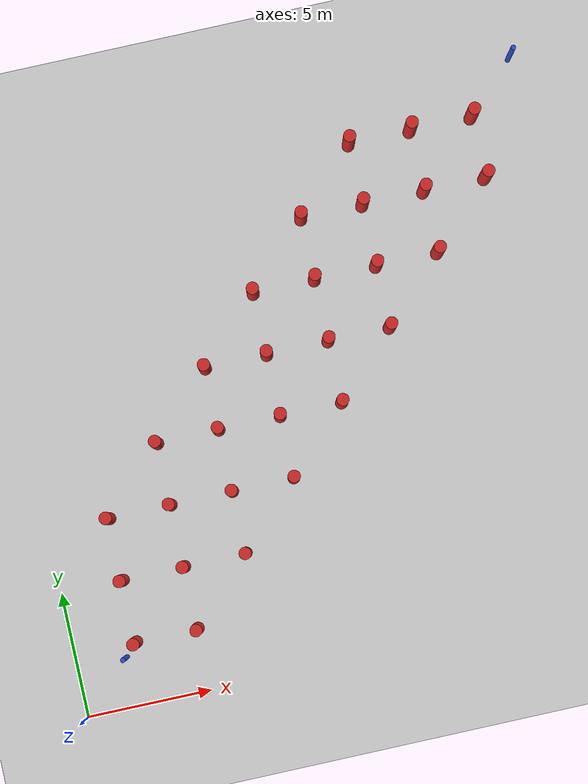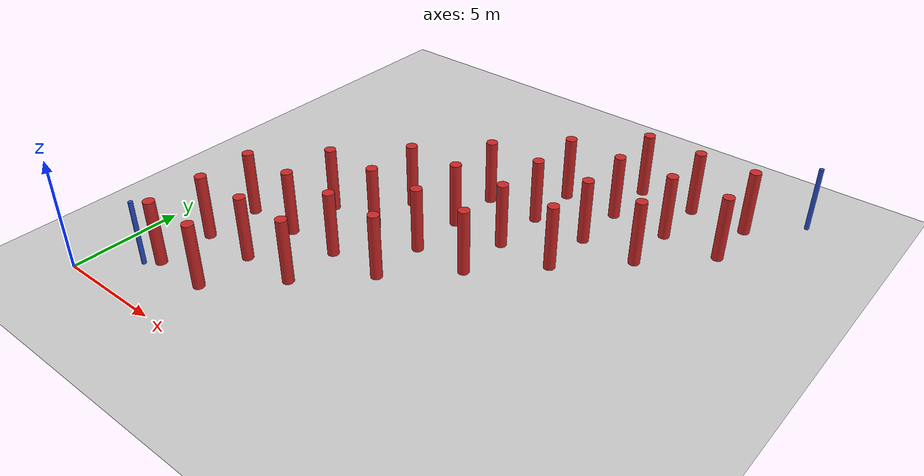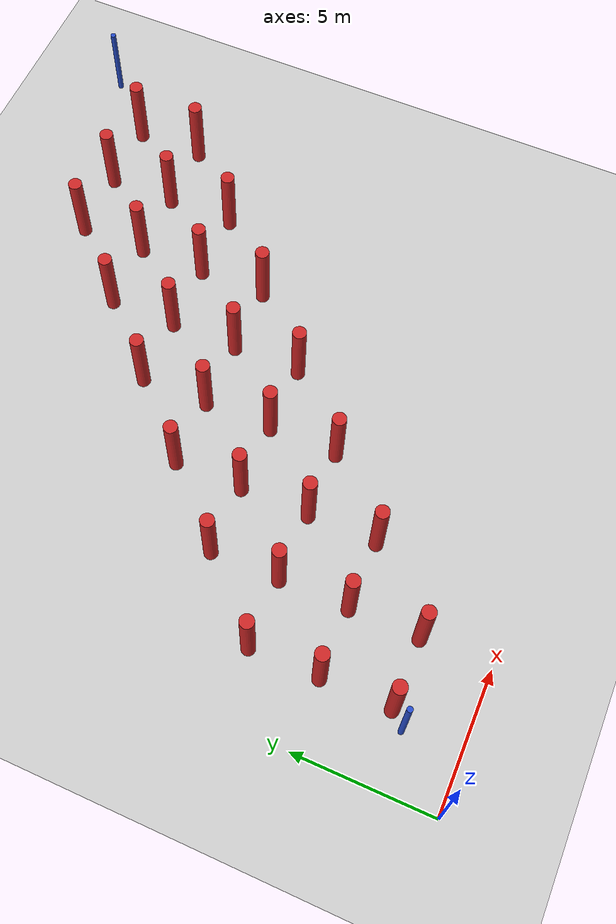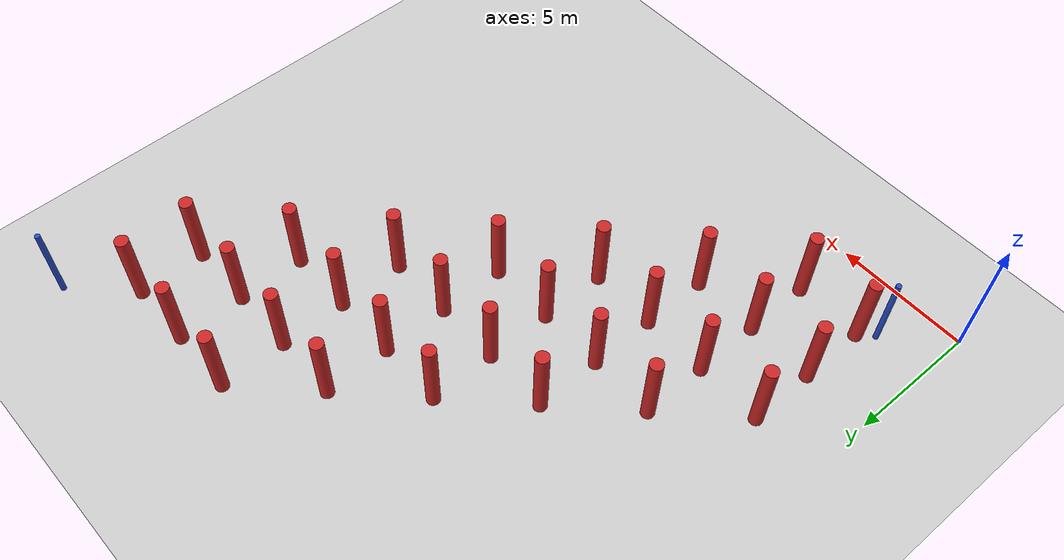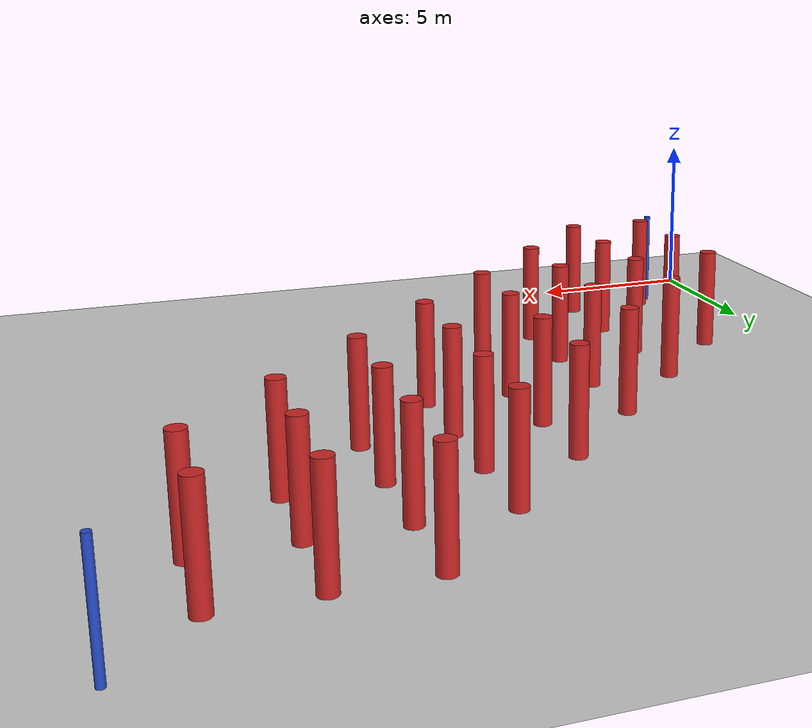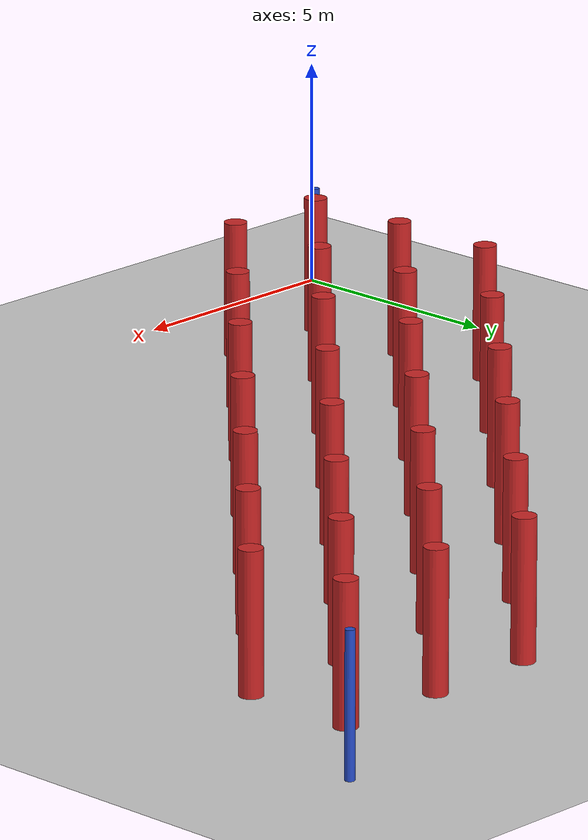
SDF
<sdf version='1.5'>
  <world name='default'>
    <light name='sun' type='directional'>
      <cast_shadows>1</cast_shadows>
      <pose>0 0 10 0 -0 0</pose>
      <diffuse>0.5 0.5 0.5 1</diffuse>
      <specular>0.2.5 0.2.5 0.2.5 1</specular>
      <attenuation>
        <range>1000</range>
        <constant>0.9</constant>
        <linear>0.01</linear>
        <quadratic>0.001</quadratic>
      </attenuation>
      <direction>-0.5 0.1 -0.9</direction>
    </light>
    <model name='ground_plane'>
      <static>1</static>
      <link name='link'>
        <collision name='collision'>
          <geometry>
            <plane>
              <normal>0 0 1</normal>
              <size>100 100</size>
            </plane>
          </geometry>
          <surface>
            <friction>
              <ode>
                <mu>100</mu>
                <mu2>50</mu2>
              </ode>
            </friction>
            <bounce/>
            <contact>
              <ode/>
            </contact>
          </surface>
          <max_contacts>9</max_contacts>
        </collision>
        <visual name='visual'>
          <cast_shadows>0</cast_shadows>
          <geometry>
            <plane>
              <normal>0 0 1</normal>
              <size>100 100</size>
            </plane>
          </geometry>
          <material>
            <script>
              <uri>file://media/materials/scripts/gazebo.material</uri>
              <name>Gazebo/Grey</name>
            </script>
          </material>
        </visual>
        <velocity_decay>
          <linear>0</linear>
          <angular>0</angular>
        </velocity_decay>
        <self_collide>0</self_collide>
        <kinematic>0</kinematic>
        <gravity>1</gravity>
      </link>
    </model>
    <physics type='ode'>
      <max_step_size>0.01</max_step_size>
      <real_time_factor>1</real_time_factor>
      <real_time_update_rate>100</real_time_update_rate>
      <gravity>0 0 -9.8</gravity>
    </physics>
    <scene>
      <ambient>0.5 0.5 0.5 1</ambient>
      <background>0.7 0.7 0.7 1</background>
      <shadows>1</shadows>
    </scene>
    <spherical_coordinates>
      <surface_model>EARTH_WGS84</surface_model>
      <latitude_deg>0</latitude_deg>
      <longitude_deg>0</longitude_deg>
      <elevation>0</elevation>
      <heading_deg>0</heading_deg>
    </spherical_coordinates>
    <model name='cylinder_1'>
      <pose>2.5 2.5 1.5 0 -0 0</pose>
      <link name='link'>
        <inertial>
          <mass>1000</mass>
          <inertia>
            <ixx>1000</ixx>
            <ixy>0</ixy>
            <ixz>0</ixz>
            <iyy>1000</iyy>
            <iyz>0</iyz>
            <izz>1000</izz>
          </inertia>
        </inertial>
        <collision name='collision'>
          <geometry>
            <cylinder>
              <radius>0.25</radius>
              <length>3</length>
            </cylinder>
          </geometry>
          <max_contacts>9</max_contacts>
          <surface>
            <bounce/>
            <friction>
              <ode/>
            </friction>
            <contact>
              <ode/>
            </contact>
          </surface>
        </collision>
        <visual name='visual'>
          <geometry>
            <cylinder>
              <radius>0.25</radius>
              <length>3</length>
            </cylinder>
          </geometry>
          <material>
            <script>
              <uri>file://media/materials/scripts/gazebo.material</uri>
              <name>Gazebo/Red</name>
            </script>
          </material>
        </visual>
        <velocity_decay>
          <linear>0</linear>
          <angular>0</angular>
        </velocity_decay>
        <self_collide>0</self_collide>
        <kinematic>0</kinematic>
        <gravity>1</gravity>
      </link>
      <static>1</static>
    </model>
    <model name='cylinder_2'>
      <pose>2.5 5 1.5 0 -0 0</pose>
      <link name='link'>
        <inertial>
          <mass>1000</mass>
          <inertia>
            <ixx>1000</ixx>
            <ixy>0</ixy>
            <ixz>0</ixz>
            <iyy>1000</iyy>
            <iyz>0</iyz>
            <izz>1000</izz>
          </inertia>
        </inertial>
        <collision name='collision'>
          <geometry>
            <cylinder>
              <radius>0.25</radius>
              <length>3</length>
            </cylinder>
          </geometry>
          <max_contacts>9</max_contacts>
          <surface>
            <bounce/>
            <friction>
              <ode/>
            </friction>
            <contact>
              <ode/>
            </contact>
          </surface>
        </collision>
        <visual name='visual'>
          <geometry>
            <cylinder>
              <radius>0.25</radius>
              <length>3</length>
            </cylinder>
          </geometry>
          <material>
            <script>
              <uri>file://media/materials/scripts/gazebo.material</uri>
              <name>Gazebo/Red</name>
            </script>
          </material>
        </visual>
        <velocity_decay>
          <linear>0</linear>
          <angular>0</angular>
        </velocity_decay>
        <self_collide>0</self_collide>
        <kinematic>0</kinematic>
        <gravity>1</gravity>
      </link>
      <static>1</static>
    </model>
    <model name='cylinder_3'>
      <pose>2.5 7.5 1.5 0 -0 0</pose>
      <link name='link'>
        <inertial>
          <mass>1000</mass>
          <inertia>
            <ixx>1000</ixx>
            <ixy>0</ixy>
            <ixz>0</ixz>
            <iyy>1000</iyy>
            <iyz>0</iyz>
            <izz>1000</izz>
          </inertia>
        </inertial>
        <collision name='collision'>
          <geometry>
            <cylinder>
              <radius>0.25</radius>
              <length>3</length>
            </cylinder>
          </geometry>
          <max_contacts>9</max_contacts>
          <surface>
            <bounce/>
            <friction>
              <ode/>
            </friction>
            <contact>
              <ode/>
            </contact>
          </surface>
        </collision>
        <visual name='visual'>
          <geometry>
            <cylinder>
              <radius>0.25</radius>
              <length>3</length>
            </cylinder>
          </geometry>
          <material>
            <script>
              <uri>file://media/materials/scripts/gazebo.material</uri>
              <name>Gazebo/Red</name>
            </script>
          </material>
        </visual>
        <velocity_decay>
          <linear>0</linear>
          <angular>0</angular>
        </velocity_decay>
        <self_collide>0</self_collide>
        <kinematic>0</kinematic>
        <gravity>1</gravity>
      </link>
      <static>1</static>
    </model>
    <model name='cylinder_4'>
      <pose>15 17.5 1.5 0 -0 0</pose>
      <link name='link'>
        <inertial>
          <mass>1000</mass>
          <inertia>
            <ixx>1000</ixx>
            <ixy>0</ixy>
            <ixz>0</ixz>
            <iyy>1000</iyy>
            <iyz>0</iyz>
            <izz>1000</izz>
          </inertia>
        </inertial>
        <collision name='collision'>
          <geometry>
            <cylinder>
              <radius>0.25</radius>
              <length>3</length>
            </cylinder>
          </geometry>
          <max_contacts>9</max_contacts>
          <surface>
            <bounce/>
            <friction>
              <ode/>
            </friction>
            <contact>
              <ode/>
            </contact>
          </surface>
        </collision>
        <visual name='visual'>
          <geometry>
            <cylinder>
              <radius>0.25</radius>
              <length>3</length>
            </cylinder>
          </geometry>
          <material>
            <script>
              <uri>file://media/materials/scripts/gazebo.material</uri>
              <name>Gazebo/Red</name>
            </script>
          </material>
        </visual>
        <velocity_decay>
          <linear>0</linear>
          <angular>0</angular>
        </velocity_decay>
        <self_collide>0</self_collide>
        <kinematic>0</kinematic>
        <gravity>1</gravity>
      </link>
      <static>1</static>
    </model>
    <model name='cylinder_5'>
      <pose>15 12.5 1.5 0 -0 0</pose>
      <link name='link'>
        <inertial>
          <mass>1000</mass>
          <inertia>
            <ixx>1000</ixx>
            <ixy>0</ixy>
            <ixz>0</ixz>
            <iyy>1000</iyy>
            <iyz>0</iyz>
            <izz>1000</izz>
          </inertia>
        </inertial>
        <collision name='collision'>
          <geometry>
            <cylinder>
              <radius>0.25</radius>
              <length>3</length>
            </cylinder>
          </geometry>
          <max_contacts>9</max_contacts>
          <surface>
            <bounce/>
            <friction>
              <ode/>
            </friction>
            <contact>
              <ode/>
            </contact>
          </surface>
        </collision>
        <visual name='visual'>
          <geometry>
            <cylinder>
              <radius>0.25</radius>
              <length>3</length>
            </cylinder>
          </geometry>
          <material>
            <script>
              <uri>file://media/materials/scripts/gazebo.material</uri>
              <name>Gazebo/Red</name>
            </script>
          </material>
        </visual>
        <velocity_decay>
          <linear>0</linear>
          <angular>0</angular>
        </velocity_decay>
        <self_collide>0</self_collide>
        <kinematic>0</kinematic>
        <gravity>1</gravity>
      </link>
      <static>1</static>
    </model>
    <model name='cylinder_6'>
      <pose>5 2.5 1.5 0 -0 0</pose>
      <link name='link'>
        <inertial>
          <mass>1000</mass>
          <inertia>
            <ixx>1000</ixx>
            <ixy>0</ixy>
            <ixz>0</ixz>
            <iyy>1000</iyy>
            <iyz>0</iyz>
            <izz>1000</izz>
          </inertia>
        </inertial>
        <collision name='collision'>
          <geometry>
            <cylinder>
              <radius>0.25</radius>
              <length>3</length>
            </cylinder>
          </geometry>
          <max_contacts>9</max_contacts>
          <surface>
            <bounce/>
            <friction>
              <ode/>
            </friction>
            <contact>
              <ode/>
            </contact>
          </surface>
        </collision>
        <visual name='visual'>
          <geometry>
            <cylinder>
              <radius>0.25</radius>
              <length>3</length>
            </cylinder>
          </geometry>
          <material>
            <script>
              <uri>file://media/materials/scripts/gazebo.material</uri>
              <name>Gazebo/Red</name>
            </script>
          </material>
        </visual>
        <velocity_decay>
          <linear>0</linear>
          <angular>0</angular>
        </velocity_decay>
        <self_collide>0</self_collide>
        <kinematic>0</kinematic>
        <gravity>1</gravity>
      </link>
      <static>1</static>
    </model>
    <model name='cylinder_7'>
      <pose>5 5 1.5 0 -0 0</pose>
      <link name='link'>
        <inertial>
          <mass>1000</mass>
          <inertia>
            <ixx>1000</ixx>
            <ixy>0</ixy>
            <ixz>0</ixz>
            <iyy>1000</iyy>
            <iyz>0</iyz>
            <izz>1000</izz>
          </inertia>
        </inertial>
        <collision name='collision'>
          <geometry>
            <cylinder>
              <radius>0.25</radius>
              <length>3</length>
            </cylinder>
          </geometry>
          <max_contacts>9</max_contacts>
          <surface>
            <bounce/>
            <friction>
              <ode/>
            </friction>
            <contact>
              <ode/>
            </contact>
          </surface>
        </collision>
        <visual name='visual'>
          <geometry>
            <cylinder>
              <radius>0.25</radius>
              <length>3</length>
            </cylinder>
          </geometry>
          <material>
            <script>
              <uri>file://media/materials/scripts/gazebo.material</uri>
              <name>Gazebo/Red</name>
            </script>
          </material>
        </visual>
        <velocity_decay>
          <linear>0</linear>
          <angular>0</angular>
        </velocity_decay>
        <self_collide>0</self_collide>
        <kinematic>0</kinematic>
        <gravity>1</gravity>
      </link>
      <static>1</static>
    </model>
    <model name='cylinder_8'>
      <pose>5 7.5 1.5 0 -0 0</pose>
      <link name='link'>
        <inertial>
          <mass>1000</mass>
          <inertia>
            <ixx>1000</ixx>
            <ixy>0</ixy>
            <ixz>0</ixz>
            <iyy>1000</iyy>
            <iyz>0</iyz>
            <izz>1000</izz>
          </inertia>
        </inertial>
        <collision name='collision'>
          <geometry>
            <cylinder>
              <radius>0.25</radius>
              <length>3</length>
            </cylinder>
          </geometry>
          <max_contacts>9</max_contacts>
          <surface>
            <bounce/>
            <friction>
              <ode/>
            </friction>
            <contact>
              <ode/>
            </contact>
          </surface>
        </collision>
        <visual name='visual'>
          <geometry>
            <cylinder>
              <radius>0.25</radius>
              <length>3</length>
            </cylinder>
          </geometry>
          <material>
            <script>
              <uri>file://media/materials/scripts/gazebo.material</uri>
              <name>Gazebo/Red</name>
            </script>
          </material>
        </visual>
        <velocity_decay>
          <linear>0</linear>
          <angular>0</angular>
        </velocity_decay>
        <self_collide>0</self_collide>
        <kinematic>0</kinematic>
        <gravity>1</gravity>
      </link>
      <static>1</static>
    </model>
    <model name='cylinder_9'>
      <pose>5 10 1.5 0 -0 0</pose>
      <link name='link'>
        <inertial>
          <mass>1000</mass>
          <inertia>
            <ixx>1000</ixx>
            <ixy>0</ixy>
            <ixz>0</ixz>
            <iyy>1000</iyy>
            <iyz>0</iyz>
            <izz>1000</izz>
          </inertia>
        </inertial>
        <collision name='collision'>
          <geometry>
            <cylinder>
              <radius>0.25</radius>
              <length>3</length>
            </cylinder>
          </geometry>
          <max_contacts>9</max_contacts>
          <surface>
            <bounce/>
            <friction>
              <ode/>
            </friction>
            <contact>
              <ode/>
            </contact>
          </surface>
        </collision>
        <visual name='visual'>
          <geometry>
            <cylinder>
              <radius>0.25</radius>
              <length>3</length>
            </cylinder>
          </geometry>
          <material>
            <script>
              <uri>file://media/materials/scripts/gazebo.material</uri>
              <name>Gazebo/Red</name>
            </script>
          </material>
        </visual>
        <velocity_decay>
          <linear>0</linear>
          <angular>0</angular>
        </velocity_decay>
        <self_collide>0</self_collide>
        <kinematic>0</kinematic>
        <gravity>1</gravity>
      </link>
      <static>1</static>
    </model>
    <model name='cylinder_10'>
      <pose>15 15 1.5 0 -0 0</pose>
      <link name='link'>
        <inertial>
          <mass>1000</mass>
          <inertia>
            <ixx>1000</ixx>
            <ixy>0</ixy>
            <ixz>0</ixz>
            <iyy>1000</iyy>
            <iyz>0</iyz>
            <izz>1000</izz>
          </inertia>
        </inertial>
        <collision name='collision'>
          <geometry>
            <cylinder>
              <radius>0.25</radius>
              <length>3</length>
            </cylinder>
          </geometry>
          <max_contacts>9</max_contacts>
          <surface>
            <bounce/>
            <friction>
              <ode/>
            </friction>
            <contact>
              <ode/>
            </contact>
          </surface>
        </collision>
        <visual name='visual'>
          <geometry>
            <cylinder>
              <radius>0.25</radius>
              <length>3</length>
            </cylinder>
          </geometry>
          <material>
            <script>
              <uri>file://media/materials/scripts/gazebo.material</uri>
              <name>Gazebo/Red</name>
            </script>
          </material>
        </visual>
        <velocity_decay>
          <linear>0</linear>
          <angular>0</angular>
        </velocity_decay>
        <self_collide>0</self_collide>
        <kinematic>0</kinematic>
        <gravity>1</gravity>
      </link>
      <static>1</static>
    </model>
    <model name='cylinder_11'>
      <pose>15 20 1.5 0 -0 0</pose>
      <link name='link'>
        <inertial>
          <mass>1000</mass>
          <inertia>
            <ixx>1000</ixx>
            <ixy>0</ixy>
            <ixz>0</ixz>
            <iyy>1000</iyy>
            <iyz>0</iyz>
            <izz>1000</izz>
          </inertia>
        </inertial>
        <collision name='collision'>
          <geometry>
            <cylinder>
              <radius>0.25</radius>
              <length>3</length>
            </cylinder>
          </geometry>
          <max_contacts>9</max_contacts>
          <surface>
            <bounce/>
            <friction>
              <ode/>
            </friction>
            <contact>
              <ode/>
            </contact>
          </surface>
        </collision>
        <visual name='visual'>
          <geometry>
            <cylinder>
              <radius>0.25</radius>
              <length>3</length>
            </cylinder>
          </geometry>
          <material>
            <script>
              <uri>file://media/materials/scripts/gazebo.material</uri>
              <name>Gazebo/Red</name>
            </script>
          </material>
        </visual>
        <velocity_decay>
          <linear>0</linear>
          <angular>0</angular>
        </velocity_decay>
        <self_collide>0</self_collide>
        <kinematic>0</kinematic>
        <gravity>1</gravity>
      </link>
      <static>1</static>
    </model>
    <model name='cylinder_12'>
      <pose>7.5 5 1.5 0 -0 0</pose>
      <link name='link'>
        <inertial>
          <mass>1000</mass>
          <inertia>
            <ixx>1000</ixx>
            <ixy>0</ixy>
            <ixz>0</ixz>
            <iyy>1000</iyy>
            <iyz>0</iyz>
            <izz>1000</izz>
          </inertia>
        </inertial>
        <collision name='collision'>
          <geometry>
            <cylinder>
              <radius>0.25</radius>
              <length>3</length>
            </cylinder>
          </geometry>
          <max_contacts>9</max_contacts>
          <surface>
            <bounce/>
            <friction>
              <ode/>
            </friction>
            <contact>
              <ode/>
            </contact>
          </surface>
        </collision>
        <visual name='visual'>
          <geometry>
            <cylinder>
              <radius>0.25</radius>
              <length>3</length>
            </cylinder>
          </geometry>
          <material>
            <script>
              <uri>file://media/materials/scripts/gazebo.material</uri>
              <name>Gazebo/Red</name>
            </script>
          </material>
        </visual>
        <velocity_decay>
          <linear>0</linear>
          <angular>0</angular>
        </velocity_decay>
        <self_collide>0</self_collide>
        <kinematic>0</kinematic>
        <gravity>1</gravity>
      </link>
      <static>1</static>
    </model>
    <model name='cylinder_13'>
      <pose>7.5 7.5 1.5 0 -0 0</pose>
      <link name='link'>
        <inertial>
          <mass>1000</mass>
          <inertia>
            <ixx>1000</ixx>
            <ixy>0</ixy>
            <ixz>0</ixz>
            <iyy>1000</iyy>
            <iyz>0</iyz>
            <izz>1000</izz>
          </inertia>
        </inertial>
        <collision name='collision'>
          <geometry>
            <cylinder>
              <radius>0.25</radius>
              <length>3</length>
            </cylinder>
          </geometry>
          <max_contacts>9</max_contacts>
          <surface>
            <bounce/>
            <friction>
              <ode/>
            </friction>
            <contact>
              <ode/>
            </contact>
          </surface>
        </collision>
        <visual name='visual'>
          <geometry>
            <cylinder>
              <radius>0.25</radius>
              <length>3</length>
            </cylinder>
          </geometry>
          <material>
            <script>
              <uri>file://media/materials/scripts/gazebo.material</uri>
              <name>Gazebo/Red</name>
            </script>
          </material>
        </visual>
        <velocity_decay>
          <linear>0</linear>
          <angular>0</angular>
        </velocity_decay>
        <self_collide>0</self_collide>
        <kinematic>0</kinematic>
        <gravity>1</gravity>
      </link>
      <static>1</static>
    </model>
    <model name='cylinder_14'>
      <pose>7.5 10 1.5 0 -0 0</pose>
      <link name='link'>
        <inertial>
          <mass>1000</mass>
          <inertia>
            <ixx>1000</ixx>
            <ixy>0</ixy>
            <ixz>0</ixz>
            <iyy>1000</iyy>
            <iyz>0</iyz>
            <izz>1000</izz>
          </inertia>
        </inertial>
        <collision name='collision'>
          <geometry>
            <cylinder>
              <radius>0.25</radius>
              <length>3</length>
            </cylinder>
          </geometry>
          <max_contacts>9</max_contacts>
          <surface>
            <bounce/>
            <friction>
              <ode/>
            </friction>
            <contact>
              <ode/>
            </contact>
          </surface>
        </collision>
        <visual name='visual'>
          <geometry>
            <cylinder>
              <radius>0.25</radius>
              <length>3</length>
            </cylinder>
          </geometry>
          <material>
            <script>
              <uri>file://media/materials/scripts/gazebo.material</uri>
              <name>Gazebo/Red</name>
            </script>
          </material>
        </visual>
        <velocity_decay>
          <linear>0</linear>
          <angular>0</angular>
        </velocity_decay>
        <self_collide>0</self_collide>
        <kinematic>0</kinematic>
        <gravity>1</gravity>
      </link>
      <static>1</static>
    </model>
    <model name='cylinder_15'>
      <pose>7.5 12.5 1.5 0 -0 0</pose>
      <link name='link'>
        <inertial>
          <mass>1000</mass>
          <inertia>
            <ixx>1000</ixx>
            <ixy>0</ixy>
            <ixz>0</ixz>
            <iyy>1000</iyy>
            <iyz>0</iyz>
            <izz>1000</izz>
          </inertia>
        </inertial>
        <collision name='collision'>
          <geometry>
            <cylinder>
              <radius>0.25</radius>
              <length>3</length>
            </cylinder>
          </geometry>
          <max_contacts>9</max_contacts>
          <surface>
            <bounce/>
            <friction>
              <ode/>
            </friction>
            <contact>
              <ode/>
            </contact>
          </surface>
        </collision>
        <visual name='visual'>
          <geometry>
            <cylinder>
              <radius>0.25</radius>
              <length>3</length>
            </cylinder>
          </geometry>
          <material>
            <script>
              <uri>file://media/materials/scripts/gazebo.material</uri>
              <name>Gazebo/Red</name>
            </script>
          </material>
        </visual>
        <velocity_decay>
          <linear>0</linear>
          <angular>0</angular>
        </velocity_decay>
        <self_collide>0</self_collide>
        <kinematic>0</kinematic>
        <gravity>1</gravity>
      </link>
      <static>1</static>
    </model>
    <model name='cylinder_16'>
      <pose>10 15 1.5 0 -0 0</pose>
      <link name='link'>
        <inertial>
          <mass>1000</mass>
          <inertia>
            <ixx>1000</ixx>
            <ixy>0</ixy>
            <ixz>0</ixz>
            <iyy>1000</iyy>
            <iyz>0</iyz>
            <izz>1000</izz>
          </inertia>
        </inertial>
        <collision name='collision'>
          <geometry>
            <cylinder>
              <radius>0.25</radius>
              <length>3</length>
            </cylinder>
          </geometry>
          <max_contacts>9</max_contacts>
          <surface>
            <bounce/>
            <friction>
              <ode/>
            </friction>
            <contact>
              <ode/>
            </contact>
          </surface>
        </collision>
        <visual name='visual'>
          <geometry>
            <cylinder>
              <radius>0.25</radius>
              <length>3</length>
            </cylinder>
          </geometry>
          <material>
            <script>
              <uri>file://media/materials/scripts/gazebo.material</uri>
              <name>Gazebo/Red</name>
            </script>
          </material>
        </visual>
        <velocity_decay>
          <linear>0</linear>
          <angular>0</angular>
        </velocity_decay>
        <self_collide>0</self_collide>
        <kinematic>0</kinematic>
        <gravity>1</gravity>
      </link>
      <static>1</static>
    </model>
    <model name='cylinder_17'>
      <pose>17.5 15 1.5 0 -0 0</pose>
      <link name='link'>
        <inertial>
          <mass>1000</mass>
          <inertia>
            <ixx>1000</ixx>
            <ixy>0</ixy>
            <ixz>0</ixz>
            <iyy>1000</iyy>
            <iyz>0</iyz>
            <izz>1000</izz>
          </inertia>
        </inertial>
        <collision name='collision'>
          <geometry>
            <cylinder>
              <radius>0.25</radius>
              <length>3</length>
            </cylinder>
          </geometry>
          <max_contacts>9</max_contacts>
          <surface>
            <bounce/>
            <friction>
              <ode/>
            </friction>
            <contact>
              <ode/>
            </contact>
          </surface>
        </collision>
        <visual name='visual'>
          <geometry>
            <cylinder>
              <radius>0.25</radius>
              <length>3</length>
            </cylinder>
          </geometry>
          <material>
            <script>
              <uri>file://media/materials/scripts/gazebo.material</uri>
              <name>Gazebo/Red</name>
            </script>
          </material>
        </visual>
        <velocity_decay>
          <linear>0</linear>
          <angular>0</angular>
        </velocity_decay>
        <self_collide>0</self_collide>
        <kinematic>0</kinematic>
        <gravity>1</gravity>
      </link>
      <static>1</static>
    </model>
    <model name='cylinder_18'>
      <pose>10 7.5 1.5 0 -0 0</pose>
      <link name='link'>
        <inertial>
          <mass>1000</mass>
          <inertia>
            <ixx>1000</ixx>
            <ixy>0</ixy>
            <ixz>0</ixz>
            <iyy>1000</iyy>
            <iyz>0</iyz>
            <izz>1000</izz>
          </inertia>
        </inertial>
        <collision name='collision'>
          <geometry>
            <cylinder>
              <radius>0.25</radius>
              <length>3</length>
            </cylinder>
          </geometry>
          <max_contacts>9</max_contacts>
          <surface>
            <bounce/>
            <friction>
              <ode/>
            </friction>
            <contact>
              <ode/>
            </contact>
          </surface>
        </collision>
        <visual name='visual'>
          <geometry>
            <cylinder>
              <radius>0.25</radius>
              <length>3</length>
            </cylinder>
          </geometry>
          <material>
            <script>
              <uri>file://media/materials/scripts/gazebo.material</uri>
              <name>Gazebo/Red</name>
            </script>
          </material>
        </visual>
        <velocity_decay>
          <linear>0</linear>
          <angular>0</angular>
        </velocity_decay>
        <self_collide>0</self_collide>
        <kinematic>0</kinematic>
        <gravity>1</gravity>
      </link>
      <static>1</static>
    </model>
    <model name='cylinder_19'>
      <pose>10 10 1.5 0 -0 0</pose>
      <link name='link'>
        <inertial>
          <mass>1000</mass>
          <inertia>
            <ixx>1000</ixx>
            <ixy>0</ixy>
            <ixz>0</ixz>
            <iyy>1000</iyy>
            <iyz>0</iyz>
            <izz>1000</izz>
          </inertia>
        </inertial>
        <collision name='collision'>
          <geometry>
            <cylinder>
              <radius>0.25</radius>
              <length>3</length>
            </cylinder>
          </geometry>
          <max_contacts>9</max_contacts>
          <surface>
            <bounce/>
            <friction>
              <ode/>
            </friction>
            <contact>
              <ode/>
            </contact>
          </surface>
        </collision>
        <visual name='visual'>
          <geometry>
            <cylinder>
              <radius>0.25</radius>
              <length>3</length>
            </cylinder>
          </geometry>
          <material>
            <script>
              <uri>file://media/materials/scripts/gazebo.material</uri>
              <name>Gazebo/Red</name>
            </script>
          </material>
        </visual>
        <velocity_decay>
          <linear>0</linear>
          <angular>0</angular>
        </velocity_decay>
        <self_collide>0</self_collide>
        <kinematic>0</kinematic>
        <gravity>1</gravity>
      </link>
      <static>1</static>
    </model>
    <model name='cylinder_20'>
      <pose>10 12.5 1.5 0 -0 0</pose>
      <link name='link'>
        <inertial>
          <mass>1000</mass>
          <inertia>
            <ixx>1000</ixx>
            <ixy>0</ixy>
            <ixz>0</ixz>
            <iyy>1000</iyy>
            <iyz>0</iyz>
            <izz>1000</izz>
          </inertia>
        </inertial>
        <collision name='collision'>
          <geometry>
            <cylinder>
              <radius>0.25</radius>
              <length>3</length>
            </cylinder>
          </geometry>
          <max_contacts>9</max_contacts>
          <surface>
            <bounce/>
            <friction>
              <ode/>
            </friction>
            <contact>
              <ode/>
            </contact>
          </surface>
        </collision>
        <visual name='visual'>
          <geometry>
            <cylinder>
              <radius>0.25</radius>
              <length>3</length>
            </cylinder>
          </geometry>
          <material>
            <script>
              <uri>file://media/materials/scripts/gazebo.material</uri>
              <name>Gazebo/Red</name>
            </script>
          </material>
        </visual>
        <velocity_decay>
          <linear>0</linear>
          <angular>0</angular>
        </velocity_decay>
        <self_collide>0</self_collide>
        <kinematic>0</kinematic>
        <gravity>1</gravity>
      </link>
      <static>1</static>
    </model>
    <model name='cylinder_21'>
      <pose>12.5 15 1.5 0 -0 0</pose>
      <link name='link'>
        <inertial>
          <mass>1000</mass>
          <inertia>
            <ixx>1000</ixx>
            <ixy>0</ixy>
            <ixz>0</ixz>
            <iyy>1000</iyy>
            <iyz>0</iyz>
            <izz>1000</izz>
          </inertia>
        </inertial>
        <collision name='collision'>
          <geometry>
            <cylinder>
              <radius>0.25</radius>
              <length>3</length>
            </cylinder>
          </geometry>
          <max_contacts>9</max_contacts>
          <surface>
            <bounce/>
            <friction>
              <ode/>
            </friction>
            <contact>
              <ode/>
            </contact>
          </surface>
        </collision>
        <visual name='visual'>
          <geometry>
            <cylinder>
              <radius>0.25</radius>
              <length>3</length>
            </cylinder>
          </geometry>
          <material>
            <script>
              <uri>file://media/materials/scripts/gazebo.material</uri>
              <name>Gazebo/Red</name>
            </script>
          </material>
        </visual>
        <velocity_decay>
          <linear>0</linear>
          <angular>0</angular>
        </velocity_decay>
        <self_collide>0</self_collide>
        <kinematic>0</kinematic>
        <gravity>1</gravity>
      </link>
      <static>1</static>
    </model>
    <model name='cylinder_22'>
      <pose>12.5 17.5 1.5 0 -0 0</pose>
      <link name='link'>
        <inertial>
          <mass>1000</mass>
          <inertia>
            <ixx>1000</ixx>
            <ixy>0</ixy>
            <ixz>0</ixz>
            <iyy>1000</iyy>
            <iyz>0</iyz>
            <izz>1000</izz>
          </inertia>
        </inertial>
        <collision name='collision'>
          <geometry>
            <cylinder>
              <radius>0.25</radius>
              <length>3</length>
            </cylinder>
          </geometry>
          <max_contacts>9</max_contacts>
          <surface>
            <bounce/>
            <friction>
              <ode/>
            </friction>
            <contact>
              <ode/>
            </contact>
          </surface>
        </collision>
        <visual name='visual'>
          <geometry>
            <cylinder>
              <radius>0.25</radius>
              <length>3</length>
            </cylinder>
          </geometry>
          <material>
            <script>
              <uri>file://media/materials/scripts/gazebo.material</uri>
              <name>Gazebo/Red</name>
            </script>
          </material>
        </visual>
        <velocity_decay>
          <linear>0</linear>
          <angular>0</angular>
        </velocity_decay>
        <self_collide>0</self_collide>
        <kinematic>0</kinematic>
        <gravity>1</gravity>
      </link>
      <static>1</static>
    </model>
    <model name='cylinder_23'>
      <pose>17.5 17.5 1.5 0 -0 0</pose>
      <link name='link'>
        <inertial>
          <mass>1000</mass>
          <inertia>
            <ixx>1000</ixx>
            <ixy>0</ixy>
            <ixz>0</ixz>
            <iyy>1000</iyy>
            <iyz>0</iyz>
            <izz>1000</izz>
          </inertia>
        </inertial>
        <collision name='collision'>
          <geometry>
            <cylinder>
              <radius>0.25</radius>
              <length>3</length>
            </cylinder>
          </geometry>
          <max_contacts>9</max_contacts>
          <surface>
            <bounce/>
            <friction>
              <ode/>
            </friction>
            <contact>
              <ode/>
            </contact>
          </surface>
        </collision>
        <visual name='visual'>
          <geometry>
            <cylinder>
              <radius>0.25</radius>
              <length>3</length>
            </cylinder>
          </geometry>
          <material>
            <script>
              <uri>file://media/materials/scripts/gazebo.material</uri>
              <name>Gazebo/Red</name>
            </script>
          </material>
        </visual>
        <velocity_decay>
          <linear>0</linear>
          <angular>0</angular>
        </velocity_decay>
        <self_collide>0</self_collide>
        <kinematic>0</kinematic>
        <gravity>1</gravity>
      </link>
      <static>1</static>
    </model>
    <model name='cylinder_24'>
      <pose>12.5 10 1.5 0 -0 0</pose>
      <link name='link'>
        <inertial>
          <mass>1000</mass>
          <inertia>
            <ixx>1000</ixx>
            <ixy>0</ixy>
            <ixz>0</ixz>
            <iyy>1000</iyy>
            <iyz>0</iyz>
            <izz>1000</izz>
          </inertia>
        </inertial>
        <collision name='collision'>
          <geometry>
            <cylinder>
              <radius>0.25</radius>
              <length>3</length>
            </cylinder>
          </geometry>
          <max_contacts>9</max_contacts>
          <surface>
            <bounce/>
            <friction>
              <ode/>
            </friction>
            <contact>
              <ode/>
            </contact>
          </surface>
        </collision>
        <visual name='visual'>
          <geometry>
            <cylinder>
              <radius>0.25</radius>
              <length>3</length>
            </cylinder>
          </geometry>
          <material>
            <script>
              <uri>file://media/materials/scripts/gazebo.material</uri>
              <name>Gazebo/Red</name>
            </script>
          </material>
        </visual>
        <velocity_decay>
          <linear>0</linear>
          <angular>0</angular>
        </velocity_decay>
        <self_collide>0</self_collide>
        <kinematic>0</kinematic>
        <gravity>1</gravity>
      </link>
      <static>1</static>
    </model>
    <model name='cylinder_25'>
      <pose>12.5 12.5 1.5 0 -0 0</pose>
      <link name='link'>
        <inertial>
          <mass>1000</mass>
          <inertia>
            <ixx>1000</ixx>
            <ixy>0</ixy>
            <ixz>0</ixz>
            <iyy>1000</iyy>
            <iyz>0</iyz>
            <izz>1000</izz>
          </inertia>
        </inertial>
        <collision name='collision'>
          <geometry>
            <cylinder>
              <radius>0.25</radius>
              <length>3</length>
            </cylinder>
          </geometry>
          <max_contacts>9</max_contacts>
          <surface>
            <bounce/>
            <friction>
              <ode/>
            </friction>
            <contact>
              <ode/>
            </contact>
          </surface>
        </collision>
        <visual name='visual'>
          <geometry>
            <cylinder>
              <radius>0.25</radius>
              <length>3</length>
            </cylinder>
          </geometry>
          <material>
            <script>
              <uri>file://media/materials/scripts/gazebo.material</uri>
              <name>Gazebo/Red</name>
            </script>
          </material>
        </visual>
        <velocity_decay>
          <linear>0</linear>
          <angular>0</angular>
        </velocity_decay>
        <self_collide>0</self_collide>
        <kinematic>0</kinematic>
        <gravity>1</gravity>
      </link>
      <static>1</static>
    </model>
    <model name='cylinder_26'>
      <pose>17.5 20 1.5 0 -0 0</pose>
      <link name='link'>
        <inertial>
          <mass>1000</mass>
          <inertia>
            <ixx>1000</ixx>
            <ixy>0</ixy>
            <ixz>0</ixz>
            <iyy>1000</iyy>
            <iyz>0</iyz>
            <izz>1000</izz>
          </inertia>
        </inertial>
        <collision name='collision'>
          <geometry>
            <cylinder>
              <radius>0.25</radius>
              <length>3</length>
            </cylinder>
          </geometry>
          <max_contacts>9</max_contacts>
          <surface>
            <bounce/>
            <friction>
              <ode/>
            </friction>
            <contact>
              <ode/>
            </contact>
          </surface>
        </collision>
        <visual name='visual'>
          <geometry>
            <cylinder>
              <radius>0.25</radius>
              <length>3</length>
            </cylinder>
          </geometry>
          <material>
            <script>
              <uri>file://media/materials/scripts/gazebo.material</uri>
              <name>Gazebo/Red</name>
            </script>
          </material>
        </visual>
        <velocity_decay>
          <linear>0</linear>
          <angular>0</angular>
        </velocity_decay>
        <self_collide>0</self_collide>
        <kinematic>0</kinematic>
        <gravity>1</gravity>
      </link>
      <static>1</static>
    </model>
    <model name='cylinder_27'>
      <pose>20 17.5 1.5 0 -0 0</pose>
      <link name='link'>
        <inertial>
          <mass>1000</mass>
          <inertia>
            <ixx>1000</ixx>
            <ixy>0</ixy>
            <ixz>0</ixz>
            <iyy>1000</iyy>
            <iyz>0</iyz>
            <izz>1000</izz>
          </inertia>
        </inertial>
        <collision name='collision'>
          <geometry>
            <cylinder>
              <radius>0.25</radius>
              <length>3</length>
            </cylinder>
          </geometry>
          <max_contacts>9</max_contacts>
          <surface>
            <bounce/>
            <friction>
              <ode/>
            </friction>
            <contact>
              <ode/>
            </contact>
          </surface>
        </collision>
        <visual name='visual'>
          <geometry>
            <cylinder>
              <radius>0.25</radius>
              <length>3</length>
            </cylinder>
          </geometry>
          <material>
            <script>
              <uri>file://media/materials/scripts/gazebo.material</uri>
              <name>Gazebo/Red</name>
            </script>
          </material>
        </visual>
        <velocity_decay>
          <linear>0</linear>
          <angular>0</angular>
        </velocity_decay>
        <self_collide>0</self_collide>
        <kinematic>0</kinematic>
        <gravity>1</gravity>
      </link>
      <static>1</static>
    </model>
    <model name='cylinder_28'>
      <pose>20 20 1.5 0 -0 0</pose>
      <link name='link'>
        <inertial>
          <mass>1000</mass>
          <inertia>
            <ixx>1000</ixx>
            <ixy>0</ixy>
            <ixz>0</ixz>
            <iyy>1000</iyy>
            <iyz>0</iyz>
            <izz>1000</izz>
          </inertia>
        </inertial>
        <collision name='collision'>
          <geometry>
            <cylinder>
              <radius>0.25</radius>
              <length>3</length>
            </cylinder>
          </geometry>
          <max_contacts>9</max_contacts>
          <surface>
            <bounce/>
            <friction>
              <ode/>
            </friction>
            <contact>
              <ode/>
            </contact>
          </surface>
        </collision>
        <visual name='visual'>
          <geometry>
            <cylinder>
              <radius>0.25</radius>
              <length>3</length>
            </cylinder>
          </geometry>
          <material>
            <script>
              <uri>file://media/materials/scripts/gazebo.material</uri>
              <name>Gazebo/Red</name>
            </script>
          </material>
        </visual>
        <velocity_decay>
          <linear>0</linear>
          <angular>0</angular>
        </velocity_decay>
        <self_collide>0</self_collide>
        <kinematic>0</kinematic>
        <gravity>1</gravity>
      </link>
      <static>1</static>
    </model>
    <model name='start'>
      <pose>2 2 1.5 0 -0 0</pose>
      <link name='link'>
        <inertial>
          <mass>1000</mass>
          <inertia>
            <ixx>1000</ixx>
            <ixy>0</ixy>
            <ixz>0</ixz>
            <iyy>1000</iyy>
            <iyz>0</iyz>
            <izz>1000</izz>
          </inertia>
        </inertial>
        <visual name='visual'>
          <geometry>
            <cylinder>
              <radius>0.1</radius>
              <length>3</length>
            </cylinder>
          </geometry>
          <material>
            <script>
              <uri>file://media/materials/scripts/gazebo.material</uri>
              <name>Gazebo/Blue</name>
            </script>
          </material>
        </visual>
        <velocity_decay>
          <linear>0</linear>
          <angular>0</angular>
        </velocity_decay>
        <self_collide>0</self_collide>
        <kinematic>0</kinematic>
        <gravity>1</gravity>
      </link>
      <static>1</static>
    </model>
    <model name='goal'>
      <pose>22 22 1.5 0 -0 0</pose>
      <link name='link'>
        <inertial>
          <mass>1000</mass>
          <inertia>
            <ixx>1000</ixx>
            <ixy>0</ixy>
            <ixz>0</ixz>
            <iyy>1000</iyy>
            <iyz>0</iyz>
            <izz>1000</izz>
          </inertia>
        </inertial>
        <visual name='visual'>
          <geometry>
            <cylinder>
              <radius>0.1</radius>
              <length>3</length>
            </cylinder>
          </geometry>
          <material>
            <script>
              <uri>file://media/materials/scripts/gazebo.material</uri>
              <name>Gazebo/Blue</name>
            </script>
          </material>
        </visual>
        <velocity_decay>
          <linear>0</linear>
          <angular>0</angular>
        </velocity_decay>
        <self_collide>0</self_collide>
        <kinematic>0</kinematic>
        <gravity>1</gravity>
      </link>
      <static>1</static>
    </model>
    <gui fullscreen='0'>
      <camera name='user_camera'>
        <pose>26.5424 -10.7085 28.7054 0 0.865796 2.096</pose>
        <view_controller>orbit</view_controller>
      </camera>
    </gui>
  </world>
</sdf>
